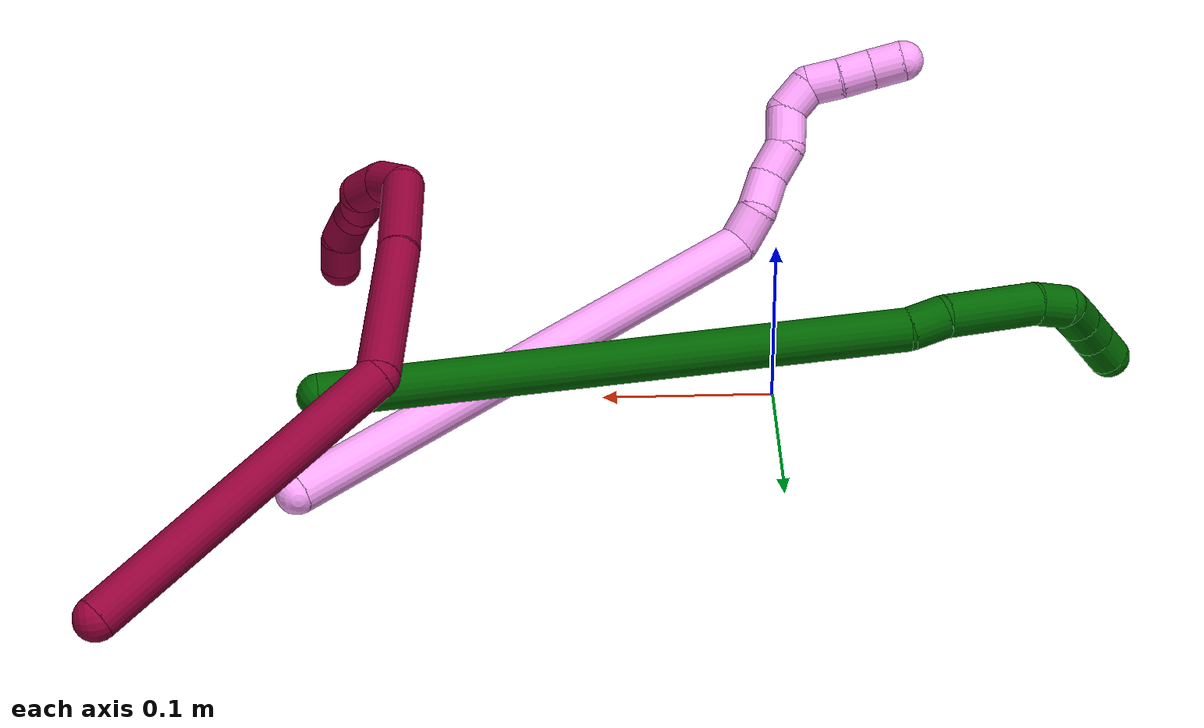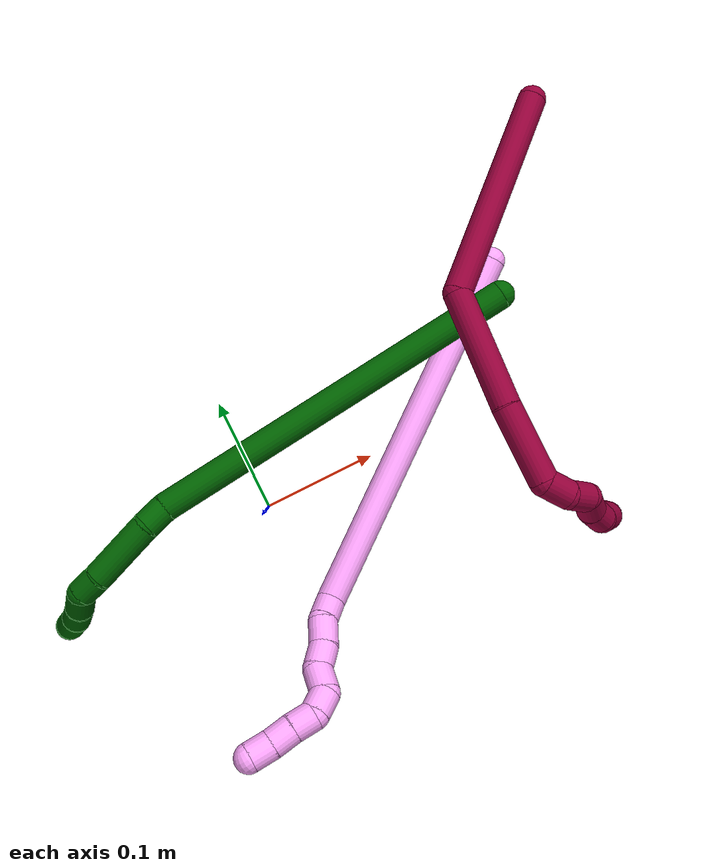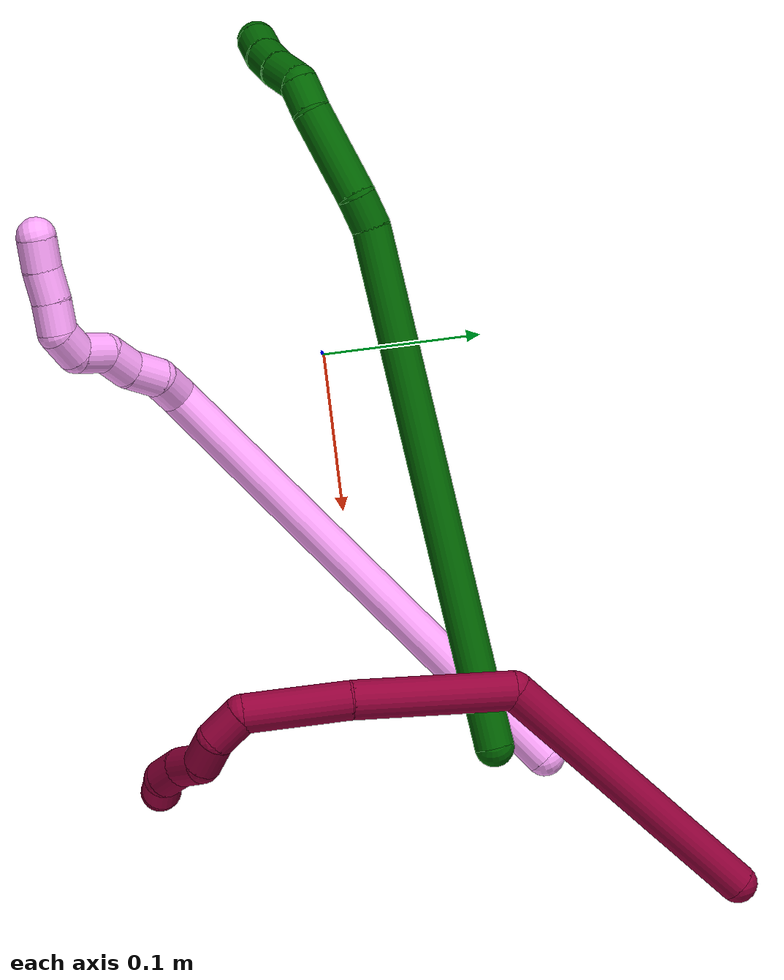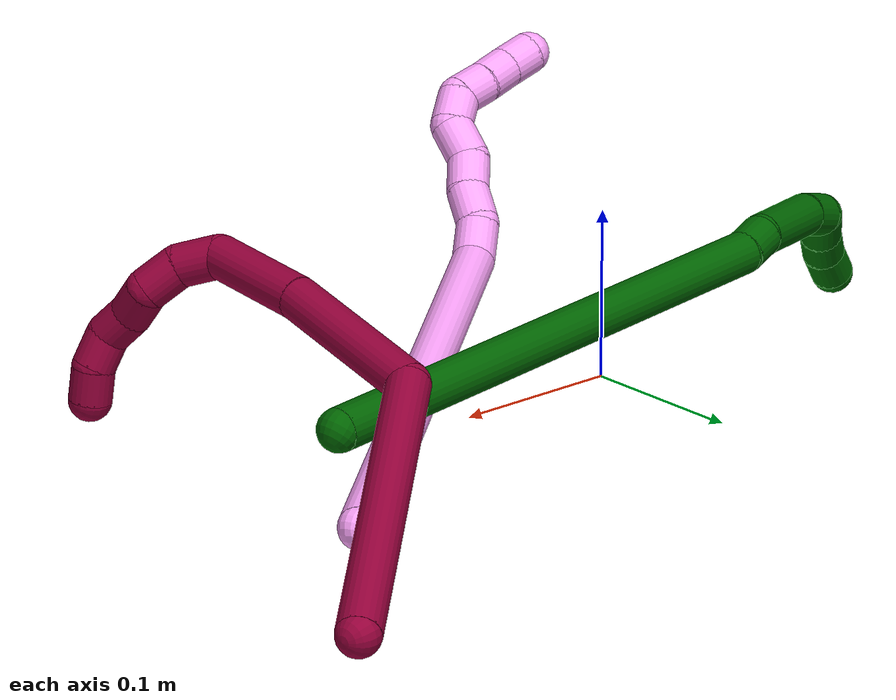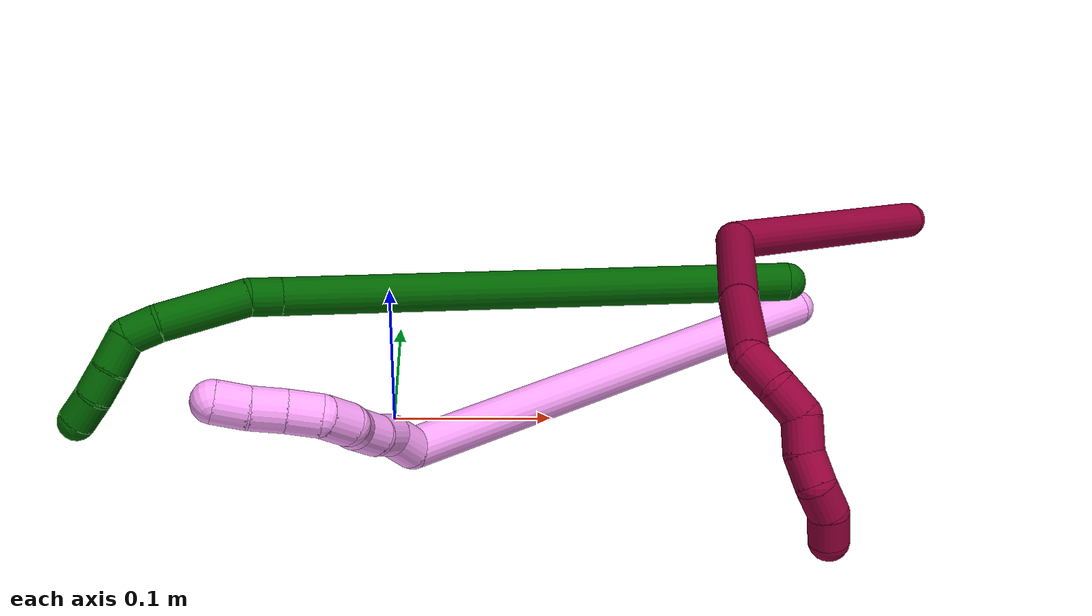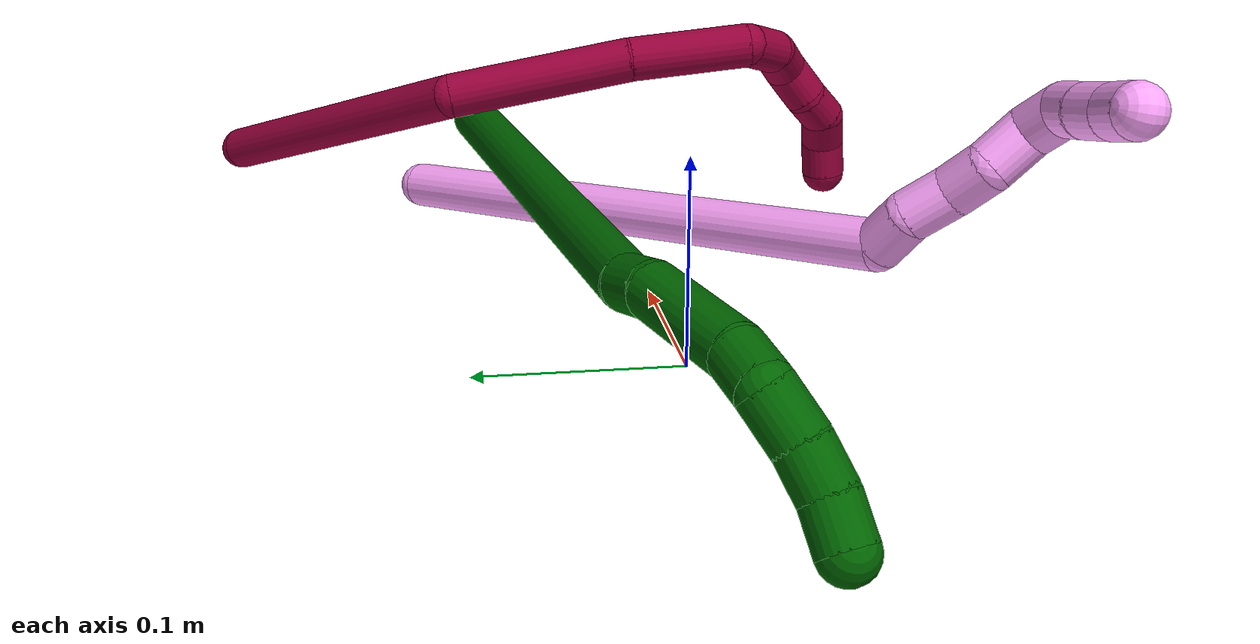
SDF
<sdf version="1.7">
 <world name="default">
  <model name="4">
   <static>0</static>
   <link name="4">
    <collision name="collision-cylinder-e_1_1_4">
     <pose>-0.100805 -0.10453 0.074385 0.952317 -0.665978 -0.353041</pose>
     <geometry><cylinder><radius>0.0125</radius><length>0.326322</length></cylinder></geometry>
     <surface>
      <friction><ode><mu>1.16</mu><mu2>1.16</mu2><slip1>0</slip1><slip2>0</slip2></ode></friction>
      <contact><ode><kp>1e+06</kp><kd>1</kd><max_vel>0</max_vel><min_depth>0.001</min_depth></ode></contact>
     </surface>
    </collision>
    <visual name="visual-cylinder-e_1_1_4">
     <pose>-0.100805 -0.10453 0.074385 0.952317 -0.665978 -0.353041</pose>
     <geometry><cylinder><radius>0.0125</radius><length>0.326322</length></cylinder></geometry>
     <material><ambient>1 0.65098 0.996078 1</ambient></material>
    </visual>
    <collision name="collision-cylinder-e_2_4_5">
     <pose>-0.213152 -0.20997 0.150888 0.405773 -1.37369 -0.334249</pose>
     <geometry><cylinder><radius>0.0125</radius><length>0.023538</length></cylinder></geometry>
     <surface>
      <friction><ode><mu>1.16</mu><mu2>1.16</mu2><slip1>0</slip1><slip2>0</slip2></ode></friction>
      <contact><ode><kp>1e+06</kp><kd>1</kd><max_vel>0</max_vel><min_depth>0.001</min_depth></ode></contact>
     </surface>
    </collision>
    <visual name="visual-cylinder-e_2_4_5">
     <pose>-0.213152 -0.20997 0.150888 0.405773 -1.37369 -0.334249</pose>
     <geometry><cylinder><radius>0.0125</radius><length>0.023538</length></cylinder></geometry>
     <material><ambient>1 0.65098 0.996078 1</ambient></material>
    </visual>
    <collision name="collision-cylinder-e_3_5_6">
     <pose>-0.2343 -0.211096 0.159565 0.032971 -0.971473 -0.017407</pose>
     <geometry><cylinder><radius>0.0125</radius><length>0.02327</length></cylinder></geometry>
     <surface>
      <friction><ode><mu>1.16</mu><mu2>1.16</mu2><slip1>0</slip1><slip2>0</slip2></ode></friction>
      <contact><ode><kp>1e+06</kp><kd>1</kd><max_vel>0</max_vel><min_depth>0.001</min_depth></ode></contact>
     </surface>
    </collision>
    <visual name="visual-cylinder-e_3_5_6">
     <pose>-0.2343 -0.211096 0.159565 0.032971 -0.971473 -0.017407</pose>
     <geometry><cylinder><radius>0.0125</radius><length>0.02327</length></cylinder></geometry>
     <material><ambient>1 0.65098 0.996078 1</ambient></material>
    </visual>
    <collision name="collision-cylinder-e_4_6_7">
     <pose>-0.254195 -0.212854 0.16981 0.395996 -1.20041 -0.272926</pose>
     <geometry><cylinder><radius>0.0125</radius><length>0.022072</length></cylinder></geometry>
     <surface>
      <friction><ode><mu>1.16</mu><mu2>1.16</mu2><slip1>0</slip1><slip2>0</slip2></ode></friction>
      <contact><ode><kp>1e+06</kp><kd>1</kd><max_vel>0</max_vel><min_depth>0.001</min_depth></ode></contact>
     </surface>
    </collision>
    <visual name="visual-cylinder-e_4_6_7">
     <pose>-0.254195 -0.212854 0.16981 0.395996 -1.20041 -0.272926</pose>
     <geometry><cylinder><radius>0.0125</radius><length>0.022072</length></cylinder></geometry>
     <material><ambient>1 0.65098 0.996078 1</ambient></material>
    </visual>
    <collision name="collision-cylinder-e_5_7_8">
     <pose>-0.273508 -0.211281 0.180109 -0.440106 -0.890062 0.212556</pose>
     <geometry><cylinder><radius>0.0125</radius><length>0.023227</length></cylinder></geometry>
     <surface>
      <friction><ode><mu>1.16</mu><mu2>1.16</mu2><slip1>0</slip1><slip2>0</slip2></ode></friction>
      <contact><ode><kp>1e+06</kp><kd>1</kd><max_vel>0</max_vel><min_depth>0.001</min_depth></ode></contact>
     </surface>
    </collision>
    <visual name="visual-cylinder-e_5_7_8">
     <pose>-0.273508 -0.211281 0.180109 -0.440106 -0.890062 0.212556</pose>
     <geometry><cylinder><radius>0.0125</radius><length>0.023227</length></cylinder></geometry>
     <material><ambient>1 0.65098 0.996078 1</ambient></material>
    </visual>
    <collision name="collision-cylinder-e_6_8_9">
     <pose>-0.292368 -0.211064 0.188825 0.942763 -1.2217 -0.685593</pose>
     <geometry><cylinder><radius>0.0125</radius><length>0.020933</length></cylinder></geometry>
     <surface>
      <friction><ode><mu>1.16</mu><mu2>1.16</mu2><slip1>0</slip1><slip2>0</slip2></ode></friction>
      <contact><ode><kp>1e+06</kp><kd>1</kd><max_vel>0</max_vel><min_depth>0.001</min_depth></ode></contact>
     </surface>
    </collision>
    <visual name="visual-cylinder-e_6_8_9">
     <pose>-0.292368 -0.211064 0.188825 0.942763 -1.2217 -0.685593</pose>
     <geometry><cylinder><radius>0.0125</radius><length>0.020933</length></cylinder></geometry>
     <material><ambient>1 0.65098 0.996078 1</ambient></material>
    </visual>
    <collision name="collision-cylinder-e_7_9_10">
     <pose>-0.308823 -0.221396 0.189537 1.75575 -0.718826 -0.849942</pose>
     <geometry><cylinder><radius>0.0125</radius><length>0.020103</length></cylinder></geometry>
     <surface>
      <friction><ode><mu>1.16</mu><mu2>1.16</mu2><slip1>0</slip1><slip2>0</slip2></ode></friction>
      <contact><ode><kp>1e+06</kp><kd>1</kd><max_vel>0</max_vel><min_depth>0.001</min_depth></ode></contact>
     </surface>
    </collision>
    <visual name="visual-cylinder-e_7_9_10">
     <pose>-0.308823 -0.221396 0.189537 1.75575 -0.718826 -0.849942</pose>
     <geometry><cylinder><radius>0.0125</radius><length>0.020103</length></cylinder></geometry>
     <material><ambient>1 0.65098 0.996078 1</ambient></material>
    </visual>
    <collision name="collision-cylinder-e_8_10_11">
     <pose>-0.322392 -0.236289 0.187673 1.63412 -0.749263 -0.793426</pose>
     <geometry><cylinder><radius>0.0125</radius><length>0.02041</length></cylinder></geometry>
     <surface>
      <friction><ode><mu>1.16</mu><mu2>1.16</mu2><slip1>0</slip1><slip2>0</slip2></ode></friction>
      <contact><ode><kp>1e+06</kp><kd>1</kd><max_vel>0</max_vel><min_depth>0.001</min_depth></ode></contact>
     </surface>
    </collision>
    <visual name="visual-cylinder-e_8_10_11">
     <pose>-0.322392 -0.236289 0.187673 1.63412 -0.749263 -0.793426</pose>
     <geometry><cylinder><radius>0.0125</radius><length>0.02041</length></cylinder></geometry>
     <material><ambient>1 0.65098 0.996078 1</ambient></material>
    </visual>
    <collision name="collision-cylinder-e_9_11_2">
     <pose>-0.336272 -0.250863 0.185595 1.79258 -0.759651 -0.926098</pose>
     <geometry><cylinder><radius>0.0125</radius><length>0.020124</length></cylinder></geometry>
     <surface>
      <friction><ode><mu>1.16</mu><mu2>1.16</mu2><slip1>0</slip1><slip2>0</slip2></ode></friction>
      <contact><ode><kp>1e+06</kp><kd>1</kd><max_vel>0</max_vel><min_depth>0.001</min_depth></ode></contact>
     </surface>
    </collision>
    <visual name="visual-cylinder-e_9_11_2">
     <pose>-0.336272 -0.250863 0.185595 1.79258 -0.759651 -0.926098</pose>
     <geometry><cylinder><radius>0.0125</radius><length>0.020124</length></cylinder></geometry>
     <material><ambient>1 0.65098 0.996078 1</ambient></material>
    </visual>
    <collision name="collision-sphere-2">
     <pose>-0.343202 -0.257981 0.18399 0 -0 0</pose>
     <geometry><sphere><radius>0.0125</radius></sphere></geometry>
     <surface>
      <friction><ode><mu>1.16</mu><mu2>1.16</mu2><slip1>0</slip1><slip2>0</slip2></ode></friction>
      <contact><ode><kp>1e+06</kp><kd>1</kd><max_vel>0</max_vel><min_depth>0.001</min_depth></ode></contact>
     </surface>
    </collision>
    <visual name="visual-sphere-2">
     <pose>-0.343202 -0.257981 0.18399 0 -0 0</pose>
     <geometry><sphere><radius>0.0125</radius></sphere></geometry>
     <material><ambient>1 0.65098 0.996078 1</ambient></material>
    </visual>
    <collision name="collision-sphere-11">
     <pose>-0.329343 -0.243746 0.1872 0 -0 0</pose>
     <geometry><sphere><radius>0.0125</radius></sphere></geometry>
     <surface>
      <friction><ode><mu>1.16</mu><mu2>1.16</mu2><slip1>0</slip1><slip2>0</slip2></ode></friction>
      <contact><ode><kp>1e+06</kp><kd>1</kd><max_vel>0</max_vel><min_depth>0.001</min_depth></ode></contact>
     </surface>
    </collision>
    <visual name="visual-sphere-11">
     <pose>-0.329343 -0.243746 0.1872 0 -0 0</pose>
     <geometry><sphere><radius>0.0125</radius></sphere></geometry>
     <material><ambient>1 0.65098 0.996078 1</ambient></material>
    </visual>
    <collision name="collision-sphere-10">
     <pose>-0.315442 -0.228832 0.188146 0 -0 0</pose>
     <geometry><sphere><radius>0.0125</radius></sphere></geometry>
     <surface>
      <friction><ode><mu>1.16</mu><mu2>1.16</mu2><slip1>0</slip1><slip2>0</slip2></ode></friction>
      <contact><ode><kp>1e+06</kp><kd>1</kd><max_vel>0</max_vel><min_depth>0.001</min_depth></ode></contact>
     </surface>
    </collision>
    <visual name="visual-sphere-10">
     <pose>-0.315442 -0.228832 0.188146 0 -0 0</pose>
     <geometry><sphere><radius>0.0125</radius></sphere></geometry>
     <material><ambient>1 0.65098 0.996078 1</ambient></material>
    </visual>
    <collision name="collision-sphere-9">
     <pose>-0.302204 -0.213961 0.190928 0 -0 0</pose>
     <geometry><sphere><radius>0.0125</radius></sphere></geometry>
     <surface>
      <friction><ode><mu>1.16</mu><mu2>1.16</mu2><slip1>0</slip1><slip2>0</slip2></ode></friction>
      <contact><ode><kp>1e+06</kp><kd>1</kd><max_vel>0</max_vel><min_depth>0.001</min_depth></ode></contact>
     </surface>
    </collision>
    <visual name="visual-sphere-9">
     <pose>-0.302204 -0.213961 0.190928 0 -0 0</pose>
     <geometry><sphere><radius>0.0125</radius></sphere></geometry>
     <material><ambient>1 0.65098 0.996078 1</ambient></material>
    </visual>
    <collision name="collision-sphere-4">
     <pose>-0.201611 -0.209061 0.148771 0 -0 0</pose>
     <geometry><sphere><radius>0.0125</radius></sphere></geometry>
     <surface>
      <friction><ode><mu>1.16</mu><mu2>1.16</mu2><slip1>0</slip1><slip2>0</slip2></ode></friction>
      <contact><ode><kp>1e+06</kp><kd>1</kd><max_vel>0</max_vel><min_depth>0.001</min_depth></ode></contact>
     </surface>
    </collision>
    <visual name="visual-sphere-4">
     <pose>-0.201611 -0.209061 0.148771 0 -0 0</pose>
     <geometry><sphere><radius>0.0125</radius></sphere></geometry>
     <material><ambient>1 0.65098 0.996078 1</ambient></material>
    </visual>
    <collision name="collision-sphere-1">
     <geometry><sphere><radius>0.0125</radius></sphere></geometry>
     <surface>
      <friction><ode><mu>1.16</mu><mu2>1.16</mu2><slip1>0</slip1><slip2>0</slip2></ode></friction>
      <contact><ode><kp>1e+06</kp><kd>1</kd><max_vel>0</max_vel><min_depth>0.001</min_depth></ode></contact>
     </surface>
    </collision>
    <visual name="visual-sphere-1">
     <geometry><sphere><radius>0.0125</radius></sphere></geometry>
     <material><ambient>1 0.65098 0.996078 1</ambient></material>
    </visual>
    <collision name="collision-sphere-8">
     <pose>-0.282533 -0.208167 0.186721 0 -0 0</pose>
     <geometry><sphere><radius>0.0125</radius></sphere></geometry>
     <surface>
      <friction><ode><mu>1.16</mu><mu2>1.16</mu2><slip1>0</slip1><slip2>0</slip2></ode></friction>
      <contact><ode><kp>1e+06</kp><kd>1</kd><max_vel>0</max_vel><min_depth>0.001</min_depth></ode></contact>
     </surface>
    </collision>
    <visual name="visual-sphere-8">
     <pose>-0.282533 -0.208167 0.186721 0 -0 0</pose>
     <geometry><sphere><radius>0.0125</radius></sphere></geometry>
     <material><ambient>1 0.65098 0.996078 1</ambient></material>
    </visual>
    <collision name="collision-sphere-5">
     <pose>-0.224693 -0.21088 0.153006 0 -0 0</pose>
     <geometry><sphere><radius>0.0125</radius></sphere></geometry>
     <surface>
      <friction><ode><mu>1.16</mu><mu2>1.16</mu2><slip1>0</slip1><slip2>0</slip2></ode></friction>
      <contact><ode><kp>1e+06</kp><kd>1</kd><max_vel>0</max_vel><min_depth>0.001</min_depth></ode></contact>
     </surface>
    </collision>
    <visual name="visual-sphere-5">
     <pose>-0.224693 -0.21088 0.153006 0 -0 0</pose>
     <geometry><sphere><radius>0.0125</radius></sphere></geometry>
     <material><ambient>1 0.65098 0.996078 1</ambient></material>
    </visual>
    <collision name="collision-sphere-6">
     <pose>-0.243907 -0.211313 0.166125 0 -0 0</pose>
     <geometry><sphere><radius>0.0125</radius></sphere></geometry>
     <surface>
      <friction><ode><mu>1.16</mu><mu2>1.16</mu2><slip1>0</slip1><slip2>0</slip2></ode></friction>
      <contact><ode><kp>1e+06</kp><kd>1</kd><max_vel>0</max_vel><min_depth>0.001</min_depth></ode></contact>
     </surface>
    </collision>
    <visual name="visual-sphere-6">
     <pose>-0.243907 -0.211313 0.166125 0 -0 0</pose>
     <geometry><sphere><radius>0.0125</radius></sphere></geometry>
     <material><ambient>1 0.65098 0.996078 1</ambient></material>
    </visual>
    <collision name="collision-sphere-7">
     <pose>-0.264483 -0.214395 0.173496 0 -0 0</pose>
     <geometry><sphere><radius>0.0125</radius></sphere></geometry>
     <surface>
      <friction><ode><mu>1.16</mu><mu2>1.16</mu2><slip1>0</slip1><slip2>0</slip2></ode></friction>
      <contact><ode><kp>1e+06</kp><kd>1</kd><max_vel>0</max_vel><min_depth>0.001</min_depth></ode></contact>
     </surface>
    </collision>
    <visual name="visual-sphere-7">
     <pose>-0.264483 -0.214395 0.173496 0 -0 0</pose>
     <geometry><sphere><radius>0.0125</radius></sphere></geometry>
     <material><ambient>1 0.65098 0.996078 1</ambient></material>
    </visual>
    <inertial>
     <pose>-0.162007 -0.144621 0.109596 0 -0 0</pose>
     <mass>0.5</mass>
     <inertia>
      <ixx>0.001331</ixx>
      <ixy>0</ixy>
      <ixz>0</ixz>
      <iyy>0.001286</iyy>
      <iyz>0</iyz>
      <izz>0.003689</izz>
     </inertia>
    </inertial>
   </link>
   <pose>0.270254 0.107422 0.011498 1.93273 1.00615 0.464634</pose>
  </model>
  <model name="6">
   <static>0</static>
   <link name="6">
    <collision name="collision-cylinder-e_1_1_4">
     <pose>-0.108792 0.043969 0.118021 -0.356624 -0.712454 0.133924</pose>
     <geometry><cylinder><radius>0.0125</radius><length>0.332854</length></cylinder></geometry>
     <surface>
      <friction><ode><mu>1.16</mu><mu2>1.16</mu2><slip1>0</slip1><slip2>0</slip2></ode></friction>
      <contact><ode><kp>1e+06</kp><kd>1</kd><max_vel>0</max_vel><min_depth>0.001</min_depth></ode></contact>
     </surface>
    </collision>
    <visual name="visual-cylinder-e_1_1_4">
     <pose>-0.108792 0.043969 0.118021 -0.356624 -0.712454 0.133924</pose>
     <geometry><cylinder><radius>0.0125</radius><length>0.332854</length></cylinder></geometry>
     <material><ambient>0 0.392157 0.003922 1</ambient></material>
    </visual>
    <collision name="collision-cylinder-e_2_4_5">
     <pose>-0.224392 0.088277 0.244639 -0.03933 -0.669375 0.013679</pose>
     <geometry><cylinder><radius>0.0125</radius><length>0.021944</length></cylinder></geometry>
     <surface>
      <friction><ode><mu>1.16</mu><mu2>1.16</mu2><slip1>0</slip1><slip2>0</slip2></ode></friction>
      <contact><ode><kp>1e+06</kp><kd>1</kd><max_vel>0</max_vel><min_depth>0.001</min_depth></ode></contact>
     </surface>
    </collision>
    <visual name="visual-cylinder-e_2_4_5">
     <pose>-0.224392 0.088277 0.244639 -0.03933 -0.669375 0.013679</pose>
     <geometry><cylinder><radius>0.0125</radius><length>0.021944</length></cylinder></geometry>
     <material><ambient>0 0.392157 0.003922 1</ambient></material>
    </visual>
    <collision name="collision-cylinder-e_3_5_6">
     <pose>-0.255203 0.090305 0.270642 -0.096793 -0.941165 0.049267</pose>
     <geometry><cylinder><radius>0.0125</radius><length>0.059395</length></cylinder></geometry>
     <surface>
      <friction><ode><mu>1.16</mu><mu2>1.16</mu2><slip1>0</slip1><slip2>0</slip2></ode></friction>
      <contact><ode><kp>1e+06</kp><kd>1</kd><max_vel>0</max_vel><min_depth>0.001</min_depth></ode></contact>
     </surface>
    </collision>
    <visual name="visual-cylinder-e_3_5_6">
     <pose>-0.255203 0.090305 0.270642 -0.096793 -0.941165 0.049267</pose>
     <geometry><cylinder><radius>0.0125</radius><length>0.059395</length></cylinder></geometry>
     <material><ambient>0 0.392157 0.003922 1</ambient></material>
    </visual>
    <collision name="collision-cylinder-e_4_6_7">
     <pose>-0.288586 0.093864 0.29258 -0.391272 -1.08925 0.238934</pose>
     <geometry><cylinder><radius>0.0125</radius><length>0.021169</length></cylinder></geometry>
     <surface>
      <friction><ode><mu>1.16</mu><mu2>1.16</mu2><slip1>0</slip1><slip2>0</slip2></ode></friction>
      <contact><ode><kp>1e+06</kp><kd>1</kd><max_vel>0</max_vel><min_depth>0.001</min_depth></ode></contact>
     </surface>
    </collision>
    <visual name="visual-cylinder-e_4_6_7">
     <pose>-0.288586 0.093864 0.29258 -0.391272 -1.08925 0.238934</pose>
     <geometry><cylinder><radius>0.0125</radius><length>0.021169</length></cylinder></geometry>
     <material><ambient>0 0.392157 0.003922 1</ambient></material>
    </visual>
    <collision name="collision-cylinder-e_5_7_8">
     <pose>-0.309587 0.095049 0.294995 2.82874 -1.3817 -2.76459</pose>
     <geometry><cylinder><radius>0.0125</radius><length>0.023662</length></cylinder></geometry>
     <surface>
      <friction><ode><mu>1.16</mu><mu2>1.16</mu2><slip1>0</slip1><slip2>0</slip2></ode></friction>
      <contact><ode><kp>1e+06</kp><kd>1</kd><max_vel>0</max_vel><min_depth>0.001</min_depth></ode></contact>
     </surface>
    </collision>
    <visual name="visual-cylinder-e_5_7_8">
     <pose>-0.309587 0.095049 0.294995 2.82874 -1.3817 -2.76459</pose>
     <geometry><cylinder><radius>0.0125</radius><length>0.023662</length></cylinder></geometry>
     <material><ambient>0 0.392157 0.003922 1</ambient></material>
    </visual>
    <collision name="collision-cylinder-e_6_8_9">
     <pose>-0.331284 0.095072 0.290813 -2.81176 -1.35734 2.73457</pose>
     <geometry><cylinder><radius>0.0125</radius><length>0.020622</length></cylinder></geometry>
     <surface>
      <friction><ode><mu>1.16</mu><mu2>1.16</mu2><slip1>0</slip1><slip2>0</slip2></ode></friction>
      <contact><ode><kp>1e+06</kp><kd>1</kd><max_vel>0</max_vel><min_depth>0.001</min_depth></ode></contact>
     </surface>
    </collision>
    <visual name="visual-cylinder-e_6_8_9">
     <pose>-0.331284 0.095072 0.290813 -2.81176 -1.35734 2.73457</pose>
     <geometry><cylinder><radius>0.0125</radius><length>0.020622</length></cylinder></geometry>
     <material><ambient>0 0.392157 0.003922 1</ambient></material>
    </visual>
    <collision name="collision-cylinder-e_7_9_2">
     <pose>-0.351039 0.098317 0.286881 -2.20482 -1.25616 1.92456</pose>
     <geometry><cylinder><radius>0.0125</radius><length>0.020355</length></cylinder></geometry>
     <surface>
      <friction><ode><mu>1.16</mu><mu2>1.16</mu2><slip1>0</slip1><slip2>0</slip2></ode></friction>
      <contact><ode><kp>1e+06</kp><kd>1</kd><max_vel>0</max_vel><min_depth>0.001</min_depth></ode></contact>
     </surface>
    </collision>
    <visual name="visual-cylinder-e_7_9_2">
     <pose>-0.351039 0.098317 0.286881 -2.20482 -1.25616 1.92456</pose>
     <geometry><cylinder><radius>0.0125</radius><length>0.020355</length></cylinder></geometry>
     <material><ambient>0 0.392157 0.003922 1</ambient></material>
    </visual>
    <collision name="collision-sphere-2">
     <pose>-0.360717 0.100855 0.285015 0 -0 0</pose>
     <geometry><sphere><radius>0.0125</radius></sphere></geometry>
     <surface>
      <friction><ode><mu>1.16</mu><mu2>1.16</mu2><slip1>0</slip1><slip2>0</slip2></ode></friction>
      <contact><ode><kp>1e+06</kp><kd>1</kd><max_vel>0</max_vel><min_depth>0.001</min_depth></ode></contact>
     </surface>
    </collision>
    <visual name="visual-sphere-2">
     <pose>-0.360717 0.100855 0.285015 0 -0 0</pose>
     <geometry><sphere><radius>0.0125</radius></sphere></geometry>
     <material><ambient>0 0.392157 0.003922 1</ambient></material>
    </visual>
    <collision name="collision-sphere-9">
     <pose>-0.341361 0.09578 0.288746 0 -0 0</pose>
     <geometry><sphere><radius>0.0125</radius></sphere></geometry>
     <surface>
      <friction><ode><mu>1.16</mu><mu2>1.16</mu2><slip1>0</slip1><slip2>0</slip2></ode></friction>
      <contact><ode><kp>1e+06</kp><kd>1</kd><max_vel>0</max_vel><min_depth>0.001</min_depth></ode></contact>
     </surface>
    </collision>
    <visual name="visual-sphere-9">
     <pose>-0.341361 0.09578 0.288746 0 -0 0</pose>
     <geometry><sphere><radius>0.0125</radius></sphere></geometry>
     <material><ambient>0 0.392157 0.003922 1</ambient></material>
    </visual>
    <collision name="collision-sphere-4">
     <pose>-0.217584 0.087938 0.236042 0 -0 0</pose>
     <geometry><sphere><radius>0.0125</radius></sphere></geometry>
     <surface>
      <friction><ode><mu>1.16</mu><mu2>1.16</mu2><slip1>0</slip1><slip2>0</slip2></ode></friction>
      <contact><ode><kp>1e+06</kp><kd>1</kd><max_vel>0</max_vel><min_depth>0.001</min_depth></ode></contact>
     </surface>
    </collision>
    <visual name="visual-sphere-4">
     <pose>-0.217584 0.087938 0.236042 0 -0 0</pose>
     <geometry><sphere><radius>0.0125</radius></sphere></geometry>
     <material><ambient>0 0.392157 0.003922 1</ambient></material>
    </visual>
    <collision name="collision-sphere-1">
     <geometry><sphere><radius>0.0125</radius></sphere></geometry>
     <surface>
      <friction><ode><mu>1.16</mu><mu2>1.16</mu2><slip1>0</slip1><slip2>0</slip2></ode></friction>
      <contact><ode><kp>1e+06</kp><kd>1</kd><max_vel>0</max_vel><min_depth>0.001</min_depth></ode></contact>
     </surface>
    </collision>
    <visual name="visual-sphere-1">
     <geometry><sphere><radius>0.0125</radius></sphere></geometry>
     <material><ambient>0 0.392157 0.003922 1</ambient></material>
    </visual>
    <collision name="collision-sphere-8">
     <pose>-0.321207 0.094365 0.292879 0 -0 0</pose>
     <geometry><sphere><radius>0.0125</radius></sphere></geometry>
     <surface>
      <friction><ode><mu>1.16</mu><mu2>1.16</mu2><slip1>0</slip1><slip2>0</slip2></ode></friction>
      <contact><ode><kp>1e+06</kp><kd>1</kd><max_vel>0</max_vel><min_depth>0.001</min_depth></ode></contact>
     </surface>
    </collision>
    <visual name="visual-sphere-8">
     <pose>-0.321207 0.094365 0.292879 0 -0 0</pose>
     <geometry><sphere><radius>0.0125</radius></sphere></geometry>
     <material><ambient>0 0.392157 0.003922 1</ambient></material>
    </visual>
    <collision name="collision-sphere-5">
     <pose>-0.2312 0.088615 0.253237 0 -0 0</pose>
     <geometry><sphere><radius>0.0125</radius></sphere></geometry>
     <surface>
      <friction><ode><mu>1.16</mu><mu2>1.16</mu2><slip1>0</slip1><slip2>0</slip2></ode></friction>
      <contact><ode><kp>1e+06</kp><kd>1</kd><max_vel>0</max_vel><min_depth>0.001</min_depth></ode></contact>
     </surface>
    </collision>
    <visual name="visual-sphere-5">
     <pose>-0.2312 0.088615 0.253237 0 -0 0</pose>
     <geometry><sphere><radius>0.0125</radius></sphere></geometry>
     <material><ambient>0 0.392157 0.003922 1</ambient></material>
    </visual>
    <collision name="collision-sphere-6">
     <pose>-0.279206 0.091995 0.288048 0 -0 0</pose>
     <geometry><sphere><radius>0.0125</radius></sphere></geometry>
     <surface>
      <friction><ode><mu>1.16</mu><mu2>1.16</mu2><slip1>0</slip1><slip2>0</slip2></ode></friction>
      <contact><ode><kp>1e+06</kp><kd>1</kd><max_vel>0</max_vel><min_depth>0.001</min_depth></ode></contact>
     </surface>
    </collision>
    <visual name="visual-sphere-6">
     <pose>-0.279206 0.091995 0.288048 0 -0 0</pose>
     <geometry><sphere><radius>0.0125</radius></sphere></geometry>
     <material><ambient>0 0.392157 0.003922 1</ambient></material>
    </visual>
    <collision name="collision-sphere-7">
     <pose>-0.297967 0.095734 0.297111 0 -0 0</pose>
     <geometry><sphere><radius>0.0125</radius></sphere></geometry>
     <surface>
      <friction><ode><mu>1.16</mu><mu2>1.16</mu2><slip1>0</slip1><slip2>0</slip2></ode></friction>
      <contact><ode><kp>1e+06</kp><kd>1</kd><max_vel>0</max_vel><min_depth>0.001</min_depth></ode></contact>
     </surface>
    </collision>
    <visual name="visual-sphere-7">
     <pose>-0.297967 0.095734 0.297111 0 -0 0</pose>
     <geometry><sphere><radius>0.0125</radius></sphere></geometry>
     <material><ambient>0 0.392157 0.003922 1</ambient></material>
    </visual>
    <inertial>
     <pose>-0.16741 0.060268 0.171474 0 -0 0</pose>
     <mass>0.5</mass>
     <inertia>
      <ixx>0.002612</ixx>
      <ixy>0</ixy>
      <ixz>0</ixz>
      <iyy>0.003309</iyy>
      <iyz>0</iyz>
      <izz>0.001246</izz>
     </inertia>
    </inertial>
   </link>
   <pose>0.258042 0.075902 0.0544 -0.350609 -0.67161 0.622577</pose>
  </model>
  <model name="8">
   <static>0</static>
   <link name="8">
    <collision name="collision-cylinder-e_1_1_4">
     <pose>-0.03264 -0.048236 -0.081273 2.60596 -0.332534 -1.09774</pose>
     <geometry><cylinder><radius>0.0125</radius><length>0.199974</length></cylinder></geometry>
     <surface>
      <friction><ode><mu>1.16</mu><mu2>1.16</mu2><slip1>0</slip1><slip2>0</slip2></ode></friction>
      <contact><ode><kp>1e+06</kp><kd>1</kd><max_vel>0</max_vel><min_depth>0.001</min_depth></ode></contact>
     </surface>
    </collision>
    <visual name="visual-cylinder-e_1_1_4">
     <pose>-0.03264 -0.048236 -0.081273 2.60596 -0.332534 -1.09774</pose>
     <geometry><cylinder><radius>0.0125</radius><length>0.199974</length></cylinder></geometry>
     <material><ambient>0.584314 0 0.227451 1</ambient></material>
    </visual>
    <collision name="collision-cylinder-e_2_4_5">
     <pose>-0.079896 -0.144342 -0.174462 1.81477 -0.288062 -0.366958</pose>
     <geometry><cylinder><radius>0.0125</radius><length>0.102901</length></cylinder></geometry>
     <surface>
      <friction><ode><mu>1.16</mu><mu2>1.16</mu2><slip1>0</slip1><slip2>0</slip2></ode></friction>
      <contact><ode><kp>1e+06</kp><kd>1</kd><max_vel>0</max_vel><min_depth>0.001</min_depth></ode></contact>
     </surface>
    </collision>
    <visual name="visual-cylinder-e_2_4_5">
     <pose>-0.079896 -0.144342 -0.174462 1.81477 -0.288062 -0.366958</pose>
     <geometry><cylinder><radius>0.0125</radius><length>0.102901</length></cylinder></geometry>
     <material><ambient>0.584314 0 0.227451 1</ambient></material>
    </visual>
    <collision name="collision-cylinder-e_3_5_6">
     <pose>-0.101129 -0.225074 -0.191781 1.73374 -0.19611 -0.230699</pose>
     <geometry><cylinder><radius>0.0125</radius><length>0.067908</length></cylinder></geometry>
     <surface>
      <friction><ode><mu>1.16</mu><mu2>1.16</mu2><slip1>0</slip1><slip2>0</slip2></ode></friction>
      <contact><ode><kp>1e+06</kp><kd>1</kd><max_vel>0</max_vel><min_depth>0.001</min_depth></ode></contact>
     </surface>
    </collision>
    <visual name="visual-cylinder-e_3_5_6">
     <pose>-0.101129 -0.225074 -0.191781 1.73374 -0.19611 -0.230699</pose>
     <geometry><cylinder><radius>0.0125</radius><length>0.067908</length></cylinder></geometry>
     <material><ambient>0.584314 0 0.227451 1</ambient></material>
    </visual>
    <collision name="collision-cylinder-e_4_6_7">
     <pose>-0.105682 -0.268644 -0.191458 1.07976 0.168274 0.100994</pose>
     <geometry><cylinder><radius>0.0125</radius><length>0.024632</length></cylinder></geometry>
     <surface>
      <friction><ode><mu>1.16</mu><mu2>1.16</mu2><slip1>0</slip1><slip2>0</slip2></ode></friction>
      <contact><ode><kp>1e+06</kp><kd>1</kd><max_vel>0</max_vel><min_depth>0.001</min_depth></ode></contact>
     </surface>
    </collision>
    <visual name="visual-cylinder-e_4_6_7">
     <pose>-0.105682 -0.268644 -0.191458 1.07976 0.168274 0.100994</pose>
     <geometry><cylinder><radius>0.0125</radius><length>0.024632</length></cylinder></geometry>
     <material><ambient>0.584314 0 0.227451 1</ambient></material>
    </visual>
    <collision name="collision-cylinder-e_5_7_8">
     <pose>-0.098126 -0.286301 -0.178947 0.797363 0.514734 0.220842</pose>
     <geometry><cylinder><radius>0.0125</radius><length>0.02232</length></cylinder></geometry>
     <surface>
      <friction><ode><mu>1.16</mu><mu2>1.16</mu2><slip1>0</slip1><slip2>0</slip2></ode></friction>
      <contact><ode><kp>1e+06</kp><kd>1</kd><max_vel>0</max_vel><min_depth>0.001</min_depth></ode></contact>
     </surface>
    </collision>
    <visual name="visual-cylinder-e_5_7_8">
     <pose>-0.098126 -0.286301 -0.178947 0.797363 0.514734 0.220842</pose>
     <geometry><cylinder><radius>0.0125</radius><length>0.02232</length></cylinder></geometry>
     <material><ambient>0.584314 0 0.227451 1</ambient></material>
    </visual>
    <collision name="collision-cylinder-e_6_8_9">
     <pose>-0.084697 -0.301033 -0.172061 1.55802 0.795116 0.786035</pose>
     <geometry><cylinder><radius>0.0125</radius><length>0.022228</length></cylinder></geometry>
     <surface>
      <friction><ode><mu>1.16</mu><mu2>1.16</mu2><slip1>0</slip1><slip2>0</slip2></ode></friction>
      <contact><ode><kp>1e+06</kp><kd>1</kd><max_vel>0</max_vel><min_depth>0.001</min_depth></ode></contact>
     </surface>
    </collision>
    <visual name="visual-cylinder-e_6_8_9">
     <pose>-0.084697 -0.301033 -0.172061 1.55802 0.795116 0.786035</pose>
     <geometry><cylinder><radius>0.0125</radius><length>0.022228</length></cylinder></geometry>
     <material><ambient>0.584314 0 0.227451 1</ambient></material>
    </visual>
    <collision name="collision-cylinder-e_7_9_10">
     <pose>-0.07073 -0.316295 -0.169191 1.21607 0.647491 0.45886</pose>
     <geometry><cylinder><radius>0.0125</radius><length>0.020001</length></cylinder></geometry>
     <surface>
      <friction><ode><mu>1.16</mu><mu2>1.16</mu2><slip1>0</slip1><slip2>0</slip2></ode></friction>
      <contact><ode><kp>1e+06</kp><kd>1</kd><max_vel>0</max_vel><min_depth>0.001</min_depth></ode></contact>
     </surface>
    </collision>
    <visual name="visual-cylinder-e_7_9_10">
     <pose>-0.07073 -0.316295 -0.169191 1.21607 0.647491 0.45886</pose>
     <geometry><cylinder><radius>0.0125</radius><length>0.020001</length></cylinder></geometry>
     <material><ambient>0.584314 0 0.227451 1</ambient></material>
    </visual>
    <collision name="collision-cylinder-e_8_10_11">
     <pose>-0.056306 -0.3269 -0.161953 0.610403 0.994561 0.338722</pose>
     <geometry><cylinder><radius>0.0125</radius><length>0.020015</length></cylinder></geometry>
     <surface>
      <friction><ode><mu>1.16</mu><mu2>1.16</mu2><slip1>0</slip1><slip2>0</slip2></ode></friction>
      <contact><ode><kp>1e+06</kp><kd>1</kd><max_vel>0</max_vel><min_depth>0.001</min_depth></ode></contact>
     </surface>
    </collision>
    <visual name="visual-cylinder-e_8_10_11">
     <pose>-0.056306 -0.3269 -0.161953 0.610403 0.994561 0.338722</pose>
     <geometry><cylinder><radius>0.0125</radius><length>0.020015</length></cylinder></geometry>
     <material><ambient>0.584314 0 0.227451 1</ambient></material>
    </visual>
    <collision name="collision-cylinder-e_9_11_2">
     <pose>-0.038224 -0.332182 -0.156202 1.03421 1.31746 0.829402</pose>
     <geometry><cylinder><radius>0.0125</radius><length>0.020021</length></cylinder></geometry>
     <surface>
      <friction><ode><mu>1.16</mu><mu2>1.16</mu2><slip1>0</slip1><slip2>0</slip2></ode></friction>
      <contact><ode><kp>1e+06</kp><kd>1</kd><max_vel>0</max_vel><min_depth>0.001</min_depth></ode></contact>
     </surface>
    </collision>
    <visual name="visual-cylinder-e_9_11_2">
     <pose>-0.038224 -0.332182 -0.156202 1.03421 1.31746 0.829402</pose>
     <geometry><cylinder><radius>0.0125</radius><length>0.020021</length></cylinder></geometry>
     <material><ambient>0.584314 0 0.227451 1</ambient></material>
    </visual>
    <collision name="collision-sphere-2">
     <pose>-0.028532 -0.334338 -0.15492 0 -0 0</pose>
     <geometry><sphere><radius>0.0125</radius></sphere></geometry>
     <surface>
      <friction><ode><mu>1.16</mu><mu2>1.16</mu2><slip1>0</slip1><slip2>0</slip2></ode></friction>
      <contact><ode><kp>1e+06</kp><kd>1</kd><max_vel>0</max_vel><min_depth>0.001</min_depth></ode></contact>
     </surface>
    </collision>
    <visual name="visual-sphere-2">
     <pose>-0.028532 -0.334338 -0.15492 0 -0 0</pose>
     <geometry><sphere><radius>0.0125</radius></sphere></geometry>
     <material><ambient>0.584314 0 0.227451 1</ambient></material>
    </visual>
    <collision name="collision-sphere-11">
     <pose>-0.047915 -0.330025 -0.157485 0 -0 0</pose>
     <geometry><sphere><radius>0.0125</radius></sphere></geometry>
     <surface>
      <friction><ode><mu>1.16</mu><mu2>1.16</mu2><slip1>0</slip1><slip2>0</slip2></ode></friction>
      <contact><ode><kp>1e+06</kp><kd>1</kd><max_vel>0</max_vel><min_depth>0.001</min_depth></ode></contact>
     </surface>
    </collision>
    <visual name="visual-sphere-11">
     <pose>-0.047915 -0.330025 -0.157485 0 -0 0</pose>
     <geometry><sphere><radius>0.0125</radius></sphere></geometry>
     <material><ambient>0.584314 0 0.227451 1</ambient></material>
    </visual>
    <collision name="collision-sphere-10">
     <pose>-0.064697 -0.323774 -0.166421 0 -0 0</pose>
     <geometry><sphere><radius>0.0125</radius></sphere></geometry>
     <surface>
      <friction><ode><mu>1.16</mu><mu2>1.16</mu2><slip1>0</slip1><slip2>0</slip2></ode></friction>
      <contact><ode><kp>1e+06</kp><kd>1</kd><max_vel>0</max_vel><min_depth>0.001</min_depth></ode></contact>
     </surface>
    </collision>
    <visual name="visual-sphere-10">
     <pose>-0.064697 -0.323774 -0.166421 0 -0 0</pose>
     <geometry><sphere><radius>0.0125</radius></sphere></geometry>
     <material><ambient>0.584314 0 0.227451 1</ambient></material>
    </visual>
    <collision name="collision-sphere-9">
     <pose>-0.076762 -0.308815 -0.171962 0 -0 0</pose>
     <geometry><sphere><radius>0.0125</radius></sphere></geometry>
     <surface>
      <friction><ode><mu>1.16</mu><mu2>1.16</mu2><slip1>0</slip1><slip2>0</slip2></ode></friction>
      <contact><ode><kp>1e+06</kp><kd>1</kd><max_vel>0</max_vel><min_depth>0.001</min_depth></ode></contact>
     </surface>
    </collision>
    <visual name="visual-sphere-9">
     <pose>-0.076762 -0.308815 -0.171962 0 -0 0</pose>
     <geometry><sphere><radius>0.0125</radius></sphere></geometry>
     <material><ambient>0.584314 0 0.227451 1</ambient></material>
    </visual>
    <collision name="collision-sphere-4">
     <pose>-0.065279 -0.096473 -0.162546 0 -0 0</pose>
     <geometry><sphere><radius>0.0125</radius></sphere></geometry>
     <surface>
      <friction><ode><mu>1.16</mu><mu2>1.16</mu2><slip1>0</slip1><slip2>0</slip2></ode></friction>
      <contact><ode><kp>1e+06</kp><kd>1</kd><max_vel>0</max_vel><min_depth>0.001</min_depth></ode></contact>
     </surface>
    </collision>
    <visual name="visual-sphere-4">
     <pose>-0.065279 -0.096473 -0.162546 0 -0 0</pose>
     <geometry><sphere><radius>0.0125</radius></sphere></geometry>
     <material><ambient>0.584314 0 0.227451 1</ambient></material>
    </visual>
    <collision name="collision-sphere-1">
     <geometry><sphere><radius>0.0125</radius></sphere></geometry>
     <surface>
      <friction><ode><mu>1.16</mu><mu2>1.16</mu2><slip1>0</slip1><slip2>0</slip2></ode></friction>
      <contact><ode><kp>1e+06</kp><kd>1</kd><max_vel>0</max_vel><min_depth>0.001</min_depth></ode></contact>
     </surface>
    </collision>
    <visual name="visual-sphere-1">
     <geometry><sphere><radius>0.0125</radius></sphere></geometry>
     <material><ambient>0.584314 0 0.227451 1</ambient></material>
    </visual>
    <collision name="collision-sphere-8">
     <pose>-0.092632 -0.293252 -0.172161 0 -0 0</pose>
     <geometry><sphere><radius>0.0125</radius></sphere></geometry>
     <surface>
      <friction><ode><mu>1.16</mu><mu2>1.16</mu2><slip1>0</slip1><slip2>0</slip2></ode></friction>
      <contact><ode><kp>1e+06</kp><kd>1</kd><max_vel>0</max_vel><min_depth>0.001</min_depth></ode></contact>
     </surface>
    </collision>
    <visual name="visual-sphere-8">
     <pose>-0.092632 -0.293252 -0.172161 0 -0 0</pose>
     <geometry><sphere><radius>0.0125</radius></sphere></geometry>
     <material><ambient>0.584314 0 0.227451 1</ambient></material>
    </visual>
    <collision name="collision-sphere-5">
     <pose>-0.094513 -0.192212 -0.186378 0 -0 0</pose>
     <geometry><sphere><radius>0.0125</radius></sphere></geometry>
     <surface>
      <friction><ode><mu>1.16</mu><mu2>1.16</mu2><slip1>0</slip1><slip2>0</slip2></ode></friction>
      <contact><ode><kp>1e+06</kp><kd>1</kd><max_vel>0</max_vel><min_depth>0.001</min_depth></ode></contact>
     </surface>
    </collision>
    <visual name="visual-sphere-5">
     <pose>-0.094513 -0.192212 -0.186378 0 -0 0</pose>
     <geometry><sphere><radius>0.0125</radius></sphere></geometry>
     <material><ambient>0.584314 0 0.227451 1</ambient></material>
    </visual>
    <collision name="collision-sphere-6">
     <pose>-0.107745 -0.257936 -0.197184 0 -0 0</pose>
     <geometry><sphere><radius>0.0125</radius></sphere></geometry>
     <surface>
      <friction><ode><mu>1.16</mu><mu2>1.16</mu2><slip1>0</slip1><slip2>0</slip2></ode></friction>
      <contact><ode><kp>1e+06</kp><kd>1</kd><max_vel>0</max_vel><min_depth>0.001</min_depth></ode></contact>
     </surface>
    </collision>
    <visual name="visual-sphere-6">
     <pose>-0.107745 -0.257936 -0.197184 0 -0 0</pose>
     <geometry><sphere><radius>0.0125</radius></sphere></geometry>
     <material><ambient>0.584314 0 0.227451 1</ambient></material>
    </visual>
    <collision name="collision-sphere-7">
     <pose>-0.10362 -0.279351 -0.185733 0 -0 0</pose>
     <geometry><sphere><radius>0.0125</radius></sphere></geometry>
     <surface>
      <friction><ode><mu>1.16</mu><mu2>1.16</mu2><slip1>0</slip1><slip2>0</slip2></ode></friction>
      <contact><ode><kp>1e+06</kp><kd>1</kd><max_vel>0</max_vel><min_depth>0.001</min_depth></ode></contact>
     </surface>
    </collision>
    <visual name="visual-sphere-7">
     <pose>-0.10362 -0.279351 -0.185733 0 -0 0</pose>
     <geometry><sphere><radius>0.0125</radius></sphere></geometry>
     <material><ambient>0.584314 0 0.227451 1</ambient></material>
    </visual>
    <inertial>
     <pose>-0.063198 -0.158004 -0.139032 0 -0 0</pose>
     <mass>0.5</mass>
     <inertia>
      <ixx>-0.000197</ixx>
      <ixy>0</ixy>
      <ixz>0</ixz>
      <iyy>-0.000803</iyy>
      <iyz>0</iyz>
      <izz>0.000682</izz>
     </inertia>
    </inertial>
   </link>
   <pose>0.36496 0.218307 0.01243 2.08085 1.43856 2.22825</pose>
  </model>
 </world>
</sdf>
